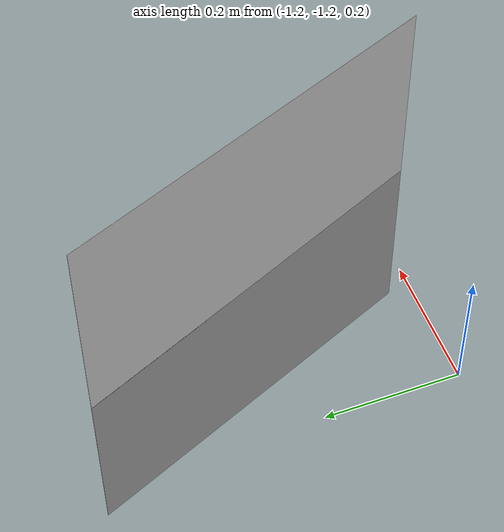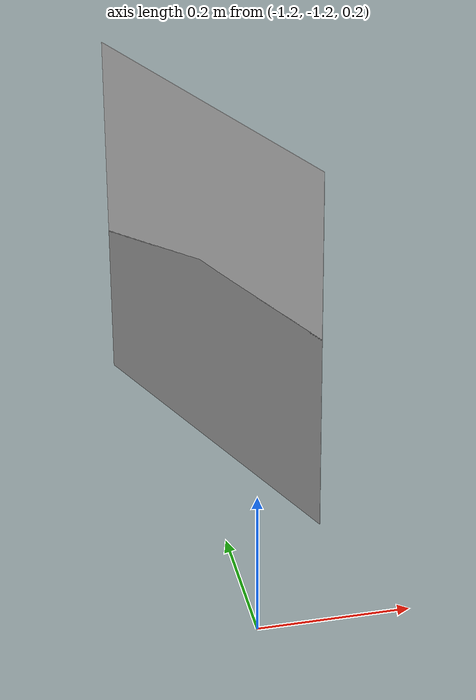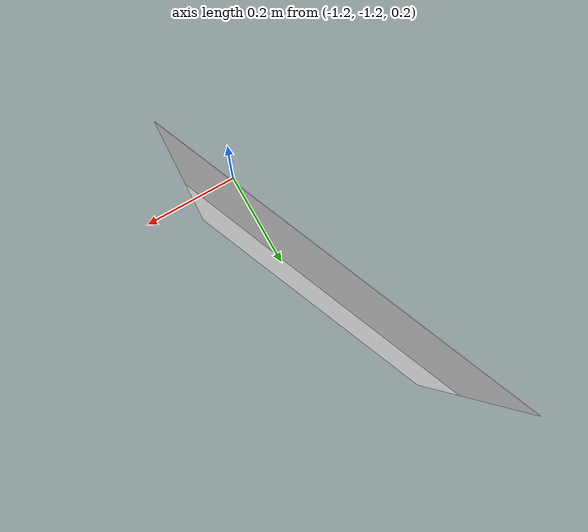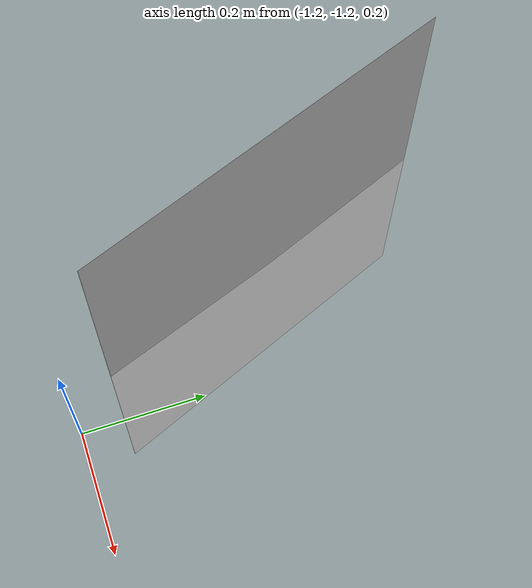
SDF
<?xml version="1.0" ?>
<sdf version="1.7">
  <world name="iiwa_aruco_world">

    <light type="directional" name="sun">
      <pose>0 0 10 0 -0.5 0</pose>
      <cast_shadows>true</cast_shadows>
      <diffuse>0.8 0.8 0.8 1</diffuse>
      <specular>0.2 0.2 0.2 1</specular>
      <attenuation>
        <range>20</range>
      </attenuation>
      <direction>0 0 -1</direction>
    </light>

    <scene>
        <ambient>0.8 0.8 0.8 1</ambient>
        <background>0.7 0.7 0.7 1</background>
        <shadows>true</shadows>
    </scene>

    <model name="aruco_marker_static_instance">
      <include>
        <uri>model://arucotag</uri>
      </include>
      <pose>-1.2 -0.9 0.55 -0.4 1.5708 0</pose>
    </model>

  </world>
</sdf>

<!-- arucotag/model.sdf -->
<sdf version='1.9'>
  <model name='arucotag'>
    <static>true</static>
    <pose>0 0 0 0 0 -1.5708</pose>
    <link name='base'>

      <collision name='base_collision'>
        <geometry>
          <box>
            <size>0.5 0.5 0.001</size> </box>
        </geometry>
      </collision>
      <visual name='base_visual_front'>
        <geometry>
          <plane>
            <normal>0 0 1</normal>
            <size>0.5 0.5</size>
          </plane>
        </geometry>
        <material>
          <diffuse>1 1 1 1</diffuse>
          <specular>0.4 0.4 0.4 1</specular>
          <pbr>
            <metal>
              <albedo_map>model://arucotag/aruco-201.png</albedo_map>
            </metal>
          </pbr>
        </material>
      </visual>

      <visual name='base_visual_back'>
        <pose>0 0 0 3.14159 0 0</pose>
        <geometry>
          <plane>
            <normal>0 0 1</normal>
            <size>0.5 0.5</size>
          </plane>
        </geometry>
        <material>
          <diffuse>0.8 0.8 0.8 1</diffuse>
          <ambient>0.8 0.8 0.8 1</ambient>
        </material>
      </visual>

    </link>
  </model>
</sdf>
